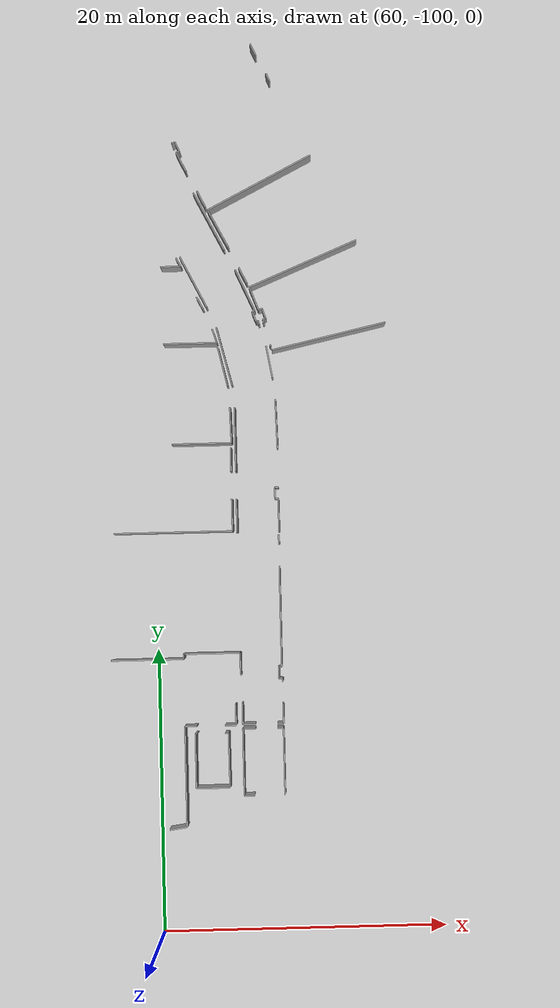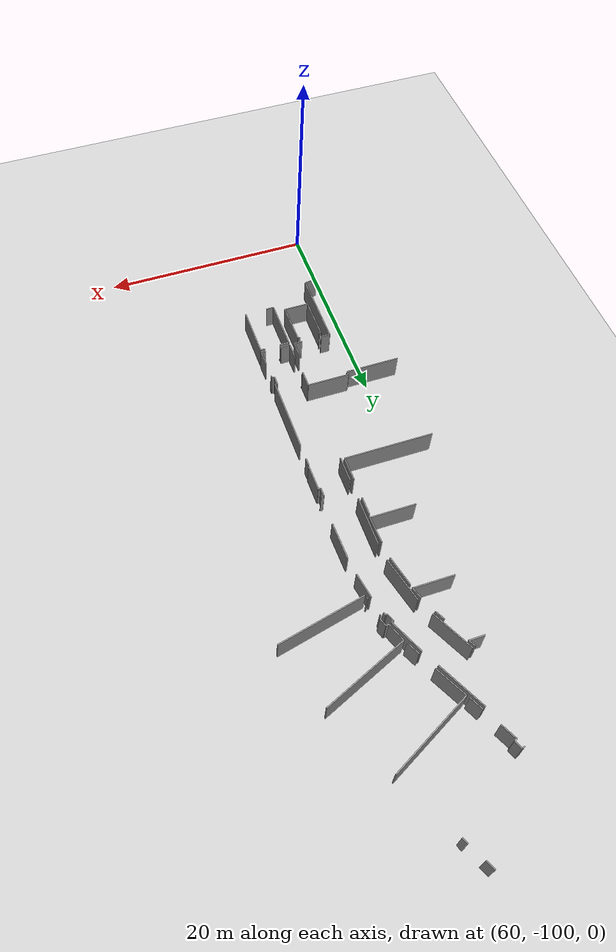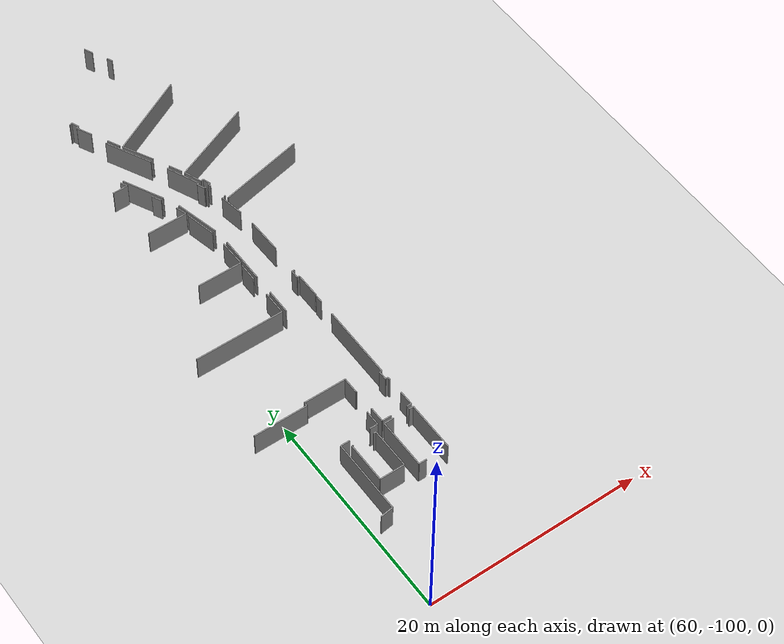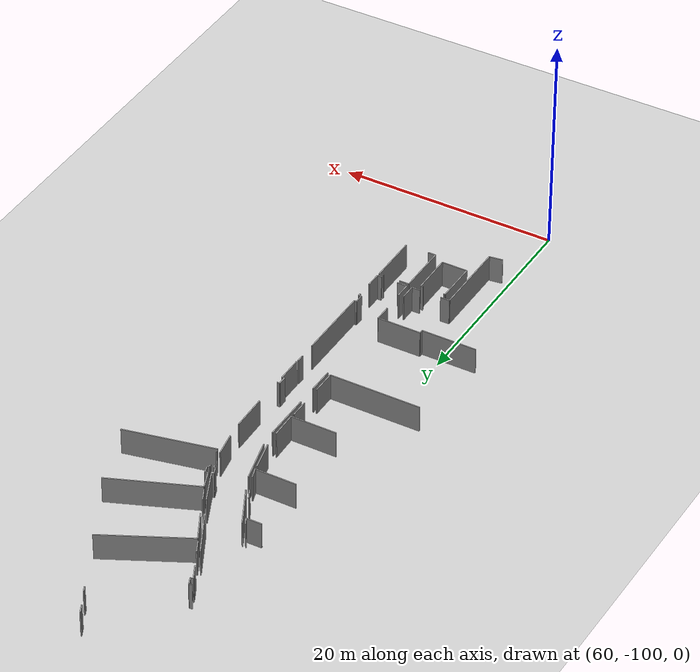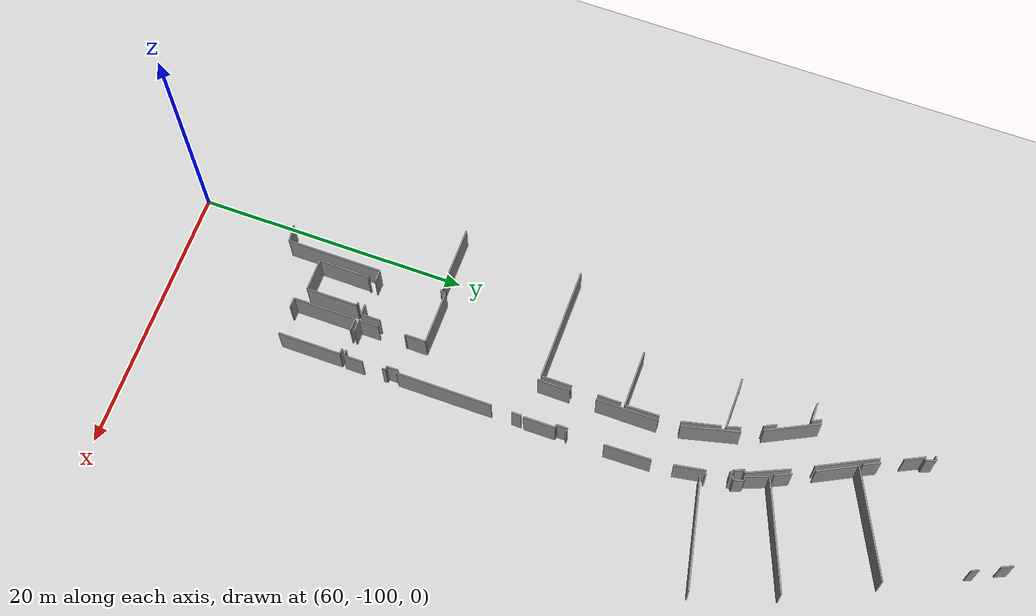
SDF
<sdf version="1.6">
 <world name="default">
  <model name="ground_plane">
   <static>1</static>
   <link name="link">
    <collision name="collision">
     <geometry><plane><normal>0 0 1</normal><size>100 100</size></plane></geometry>
     <surface><friction><ode><mu>100</mu><mu2>50</mu2></ode></friction></surface>
    </collision>
    <visual name="visual">
     <cast_shadows>0</cast_shadows>
     <geometry><plane><normal>0 0 1</normal><size>100 100</size></plane></geometry>
     <material>
      <script><uri>file://media/materials/scripts/gazebo.material</uri><name>Gazebo/Grey</name></script>
     </material>
    </visual>
   </link>
  </model>
  <model name="0510045922_A-40">
   <static>1</static>
   <link name="Wall_1893">
    <collision name="Wall_1893_Collision">
     <geometry><box><size>2.38317341298 0.1 2.5</size></box></geometry>
     <pose>1.19158670649 0 1.25 0 0 0</pose>
    </collision>
    <visual name="Wall_1893_Visual">
     <pose>1.19158670649 0 1.25 0 0 0</pose>
     <geometry><box><size>2.38317341298 0.1 2.5</size></box></geometry>
     <material>
      <script><uri>file://media/materials/scripts/gazebo.material</uri><name>Gazebo/Grey</name></script>
      <ambient>1 1 1 1</ambient>
     </material>
    </visual>
    <pose>199.995221453 -173.059007435 0 0 0 1.57079632679</pose>
   </link>
   <link name="Wall_1894">
    <collision name="Wall_1894_Collision">
     <geometry><box><size>4.55512486497 0.1 2.5</size></box></geometry>
     <pose>2.27756243248 0 1.25 0 0 0</pose>
    </collision>
    <visual name="Wall_1894_Visual">
     <pose>2.27756243248 0 1.25 0 0 0</pose>
     <geometry><box><size>4.55512486497 0.1 2.5</size></box></geometry>
     <material>
      <script><uri>file://media/materials/scripts/gazebo.material</uri><name>Gazebo/Grey</name></script>
      <ambient>1 1 1 1</ambient>
     </material>
    </visual>
    <pose>199.995221453 -168.733151172 0 0 0 1.57079632679</pose>
   </link>
   <link name="Wall_1895">
    <collision name="Wall_1895_Collision">
     <geometry><box><size>4.22030789969 0.1 2.5</size></box></geometry>
     <pose>2.11015394985 0 1.25 0 0 0</pose>
    </collision>
    <visual name="Wall_1895_Visual">
     <pose>2.11015394985 0 1.25 0 0 0</pose>
     <geometry><box><size>4.22030789969 0.1 2.5</size></box></geometry>
     <material>
      <script><uri>file://media/materials/scripts/gazebo.material</uri><name>Gazebo/Grey</name></script>
      <ambient>1 1 1 1</ambient>
     </material>
    </visual>
    <pose>199.860761263 -162.582804855 0 0 0 1.81577498992</pose>
   </link>
   <link name="Wall_1896">
    <collision name="Wall_1896_Collision">
     <geometry><box><size>4.06427198817 0.1 2.5</size></box></geometry>
     <pose>2.03213599408 0 1.25 0 0 0</pose>
    </collision>
    <visual name="Wall_1896_Visual">
     <pose>2.03213599408 0 1.25 0 0 0</pose>
     <geometry><box><size>4.06427198817 0.1 2.5</size></box></geometry>
     <material>
      <script><uri>file://media/materials/scripts/gazebo.material</uri><name>Gazebo/Grey</name></script>
      <ambient>1 1 1 1</ambient>
     </material>
    </visual>
    <pose>198.2042829 -157.041723327 0 0 0 2.03928251749</pose>
   </link>
   <link name="Wall_1902">
    <collision name="Wall_1902_Collision">
     <geometry><box><size>4.58200148981 0.1 2.5</size></box></geometry>
     <pose>2.29100074491 0 1.25 0 0 0</pose>
    </collision>
    <visual name="Wall_1902_Visual">
     <pose>2.29100074491 0 1.25 0 0 0</pose>
     <geometry><box><size>4.58200148981 0.1 2.5</size></box></geometry>
     <material>
      <script><uri>file://media/materials/scripts/gazebo.material</uri><name>Gazebo/Grey</name></script>
      <ambient>1 1 1 1</ambient>
     </material>
    </visual>
    <pose>197.437681896 -148.891249921 0 0 0 -1.10005347118</pose>
   </link>
   <link name="Wall_1903">
    <collision name="Wall_1903_Collision">
     <geometry><box><size>3.23225975953 0.1 2.5</size></box></geometry>
     <pose>1.61612987977 0 1.25 0 0 0</pose>
    </collision>
    <visual name="Wall_1903_Visual">
     <pose>1.61612987977 0 1.25 0 0 0</pose>
     <geometry><box><size>3.23225975953 0.1 2.5</size></box></geometry>
     <material>
      <script><uri>file://media/materials/scripts/gazebo.material</uri><name>Gazebo/Grey</name></script>
      <ambient>1 1 1 1</ambient>
     </material>
    </visual>
    <pose>200.268462858 -154.415809875 0 0 0 -1.14823641812</pose>
   </link>
   <link name="Wall_1904">
    <collision name="Wall_1904_Collision">
     <geometry><box><size>0.202545461097 0.1 2.5</size></box></geometry>
     <pose>0.101272730549 0 1.25 0 0 0</pose>
    </collision>
    <visual name="Wall_1904_Visual">
     <pose>0.101272730549 0 1.25 0 0 0</pose>
     <geometry><box><size>0.202545461097 0.1 2.5</size></box></geometry>
     <material>
      <script><uri>file://media/materials/scripts/gazebo.material</uri><name>Gazebo/Grey</name></script>
      <ambient>1 1 1 1</ambient>
     </material>
    </visual>
    <pose>201.594001398 -157.363766919 0 0 0 -2.77180597771</pose>
   </link>
   <link name="Wall_1905">
    <collision name="Wall_1905_Collision">
     <geometry><box><size>0.759554662817 0.1 2.5</size></box></geometry>
     <pose>0.379777331408 0 1.25 0 0 0</pose>
    </collision>
    <visual name="Wall_1905_Visual">
     <pose>0.379777331408 0 1.25 0 0 0</pose>
     <geometry><box><size>0.759554662817 0.1 2.5</size></box></geometry>
     <material>
      <script><uri>file://media/materials/scripts/gazebo.material</uri><name>Gazebo/Grey</name></script>
      <ambient>1 1 1 1</ambient>
     </material>
    </visual>
    <pose>201.405147106 -157.436970198 0 0 0 -1.19706339817</pose>
   </link>
   <link name="Wall_1906">
    <collision name="Wall_1906_Collision">
     <geometry><box><size>0.14198068357 0.1 2.5</size></box></geometry>
     <pose>0.0709903417851 0 1.25 0 0 0</pose>
    </collision>
    <visual name="Wall_1906_Visual">
     <pose>0.0709903417851 0 1.25 0 0 0</pose>
     <geometry><box><size>0.14198068357 0.1 2.5</size></box></geometry>
     <material>
      <script><uri>file://media/materials/scripts/gazebo.material</uri><name>Gazebo/Grey</name></script>
      <ambient>1 1 1 1</ambient>
     </material>
    </visual>
    <pose>201.68245536 -158.144093538 0 0 0 0.3432647882</pose>
   </link>
   <link name="Wall_1907">
    <collision name="Wall_1907_Collision">
     <geometry><box><size>0.259850288648 0.1 2.5</size></box></geometry>
     <pose>0.129925144324 0 1.25 0 0 0</pose>
    </collision>
    <visual name="Wall_1907_Visual">
     <pose>0.129925144324 0 1.25 0 0 0</pose>
     <geometry><box><size>0.259850288648 0.1 2.5</size></box></geometry>
     <material>
      <script><uri>file://media/materials/scripts/gazebo.material</uri><name>Gazebo/Grey</name></script>
      <ambient>1 1 1 1</ambient>
     </material>
    </visual>
    <pose>201.816153015 -158.096308064 0 0 0 -1.27193781234</pose>
   </link>
   <link name="Wall_1908">
    <collision name="Wall_1908_Collision">
     <geometry><box><size>2.28307194365 0.1 2.5</size></box></geometry>
     <pose>1.14153597183 0 1.25 0 0 0</pose>
    </collision>
    <visual name="Wall_1908_Visual">
     <pose>1.14153597183 0 1.25 0 0 0</pose>
     <geometry><box><size>2.28307194365 0.1 2.5</size></box></geometry>
     <material>
      <script><uri>file://media/materials/scripts/gazebo.material</uri><name>Gazebo/Grey</name></script>
      <ambient>1 1 1 1</ambient>
     </material>
    </visual>
    <pose>202.337726377 -159.891313465 0 0 0 -1.39838137295</pose>
   </link>
   <link name="Wall_1909">
    <collision name="Wall_1909_Collision">
     <geometry><box><size>3.43565894701 0.1 2.5</size></box></geometry>
     <pose>1.71782947351 0 1.25 0 0 0</pose>
    </collision>
    <visual name="Wall_1909_Visual">
     <pose>1.71782947351 0 1.25 0 0 0</pose>
     <geometry><box><size>3.43565894701 0.1 2.5</size></box></geometry>
     <material>
      <script><uri>file://media/materials/scripts/gazebo.material</uri><name>Gazebo/Grey</name></script>
      <ambient>1 1 1 1</ambient>
     </material>
    </visual>
    <pose>202.893613776 -163.695088009 0 0 0 -1.54726777525</pose>
   </link>
   <link name="Wall_1911">
    <collision name="Wall_1911_Collision">
     <geometry><box><size>0.253923873674 0.1 2.5</size></box></geometry>
     <pose>0.126961936837 0 1.25 0 0 0</pose>
    </collision>
    <visual name="Wall_1911_Visual">
     <pose>0.126961936837 0 1.25 0 0 0</pose>
     <geometry><box><size>0.253923873674 0.1 2.5</size></box></geometry>
     <material>
      <script><uri>file://media/materials/scripts/gazebo.material</uri><name>Gazebo/Grey</name></script>
      <ambient>1 1 1 1</ambient>
     </material>
    </visual>
    <pose>202.974442397 -169.909741374 0 0 0 3.14159265359</pose>
   </link>
   <link name="Wall_1912">
    <collision name="Wall_1912_Collision">
     <geometry><box><size>0.791256275021 0.1 2.5</size></box></geometry>
     <pose>0.39562813751 0 1.25 0 0 0</pose>
    </collision>
    <visual name="Wall_1912_Visual">
     <pose>0.39562813751 0 1.25 0 0 0</pose>
     <geometry><box><size>0.791256275021 0.1 2.5</size></box></geometry>
     <material>
      <script><uri>file://media/materials/scripts/gazebo.material</uri><name>Gazebo/Grey</name></script>
      <ambient>1 1 1 1</ambient>
     </material>
    </visual>
    <pose>202.720518523 -169.909741374 0 0 0 -1.57079632679</pose>
   </link>
   <link name="Wall_1913">
    <collision name="Wall_1913_Collision">
     <geometry><box><size>0.219864014742 0.1 2.5</size></box></geometry>
     <pose>0.109932007371 0 1.25 0 0 0</pose>
    </collision>
    <visual name="Wall_1913_Visual">
     <pose>0.109932007371 0 1.25 0 0 0</pose>
     <geometry><box><size>0.219864014742 0.1 2.5</size></box></geometry>
     <material>
      <script><uri>file://media/materials/scripts/gazebo.material</uri><name>Gazebo/Grey</name></script>
      <ambient>1 1 1 1</ambient>
     </material>
    </visual>
    <pose>202.720518523 -170.700997649 0 0 0 0.0</pose>
   </link>
   <link name="Wall_1914">
    <collision name="Wall_1914_Collision">
     <geometry><box><size>2.35806766497 0.1 2.5</size></box></geometry>
     <pose>1.17903383248 0 1.25 0 0 0</pose>
    </collision>
    <visual name="Wall_1914_Visual">
     <pose>1.17903383248 0 1.25 0 0 0</pose>
     <geometry><box><size>2.35806766497 0.1 2.5</size></box></geometry>
     <material>
      <script><uri>file://media/materials/scripts/gazebo.material</uri><name>Gazebo/Grey</name></script>
      <ambient>1 1 1 1</ambient>
     </material>
    </visual>
    <pose>202.940382538 -170.700997649 0 0 0 -1.56378986605</pose>
   </link>
   <link name="Wall_1915">
    <collision name="Wall_1915_Collision">
     <geometry><box><size>0.428544195209 0.1 2.5</size></box></geometry>
     <pose>0.214272097604 0 1.25 0 0 0</pose>
    </collision>
    <visual name="Wall_1915_Visual">
     <pose>0.214272097604 0 1.25 0 0 0</pose>
     <geometry><box><size>0.428544195209 0.1 2.5</size></box></geometry>
     <material>
      <script><uri>file://media/materials/scripts/gazebo.material</uri><name>Gazebo/Grey</name></script>
      <ambient>1 1 1 1</ambient>
     </material>
    </visual>
    <pose>202.96224185 -186.535781915 0 0 0 3.14159265359</pose>
   </link>
   <link name="Wall_1916">
    <collision name="Wall_1916_Collision">
     <geometry><box><size>0.902586261676 0.1 2.5</size></box></geometry>
     <pose>0.451293130838 0 1.25 0 0 0</pose>
    </collision>
    <visual name="Wall_1916_Visual">
     <pose>0.451293130838 0 1.25 0 0 0</pose>
     <geometry><box><size>0.902586261676 0.1 2.5</size></box></geometry>
     <material>
      <script><uri>file://media/materials/scripts/gazebo.material</uri><name>Gazebo/Grey</name></script>
      <ambient>1 1 1 1</ambient>
     </material>
    </visual>
    <pose>200.99236195 -186.535781915 0 0 0 3.14159265359</pose>
   </link>
   <link name="Wall_1917">
    <collision name="Wall_1917_Collision">
     <geometry><box><size>1.48363728792 0.1 2.5</size></box></geometry>
     <pose>0.74181864396 0 1.25 0 0 0</pose>
    </collision>
    <visual name="Wall_1917_Visual">
     <pose>0.74181864396 0 1.25 0 0 0</pose>
     <geometry><box><size>1.48363728792 0.1 2.5</size></box></geometry>
     <material>
      <script><uri>file://media/materials/scripts/gazebo.material</uri><name>Gazebo/Grey</name></script>
      <ambient>1 1 1 1</ambient>
     </material>
    </visual>
    <pose>200.089775688 -186.535781915 0 0 0 1.57079632679</pose>
   </link>
   <link name="Wall_1918">
    <collision name="Wall_1918_Collision">
     <geometry><box><size>0.0775243057762 0.1 2.5</size></box></geometry>
     <pose>0.0387621528881 0 1.25 0 0 0</pose>
    </collision>
    <visual name="Wall_1918_Visual">
     <pose>0.0387621528881 0 1.25 0 0 0</pose>
     <geometry><box><size>0.0775243057762 0.1 2.5</size></box></geometry>
     <material>
      <script><uri>file://media/materials/scripts/gazebo.material</uri><name>Gazebo/Grey</name></script>
      <ambient>1 1 1 1</ambient>
     </material>
    </visual>
    <pose>200.089775688 -183.029904048 0 0 0 3.14159265359</pose>
   </link>
   <link name="Wall_1919">
    <collision name="Wall_1919_Collision">
     <geometry><box><size>1.52913515918 0.1 2.5</size></box></geometry>
     <pose>0.764567579589 0 1.25 0 0 0</pose>
    </collision>
    <visual name="Wall_1919_Visual">
     <pose>0.764567579589 0 1.25 0 0 0</pose>
     <geometry><box><size>1.52913515918 0.1 2.5</size></box></geometry>
     <material>
      <script><uri>file://media/materials/scripts/gazebo.material</uri><name>Gazebo/Grey</name></script>
      <ambient>1 1 1 1</ambient>
     </material>
    </visual>
    <pose>200.012251382 -183.029904048 0 0 0 1.57079632679</pose>
   </link>
   <link name="Wall_1920">
    <collision name="Wall_1920_Collision">
     <geometry><box><size>3.98678274131 0.1 2.5</size></box></geometry>
     <pose>1.99339137066 0 1.25 0 0 0</pose>
    </collision>
    <visual name="Wall_1920_Visual">
     <pose>1.99339137066 0 1.25 0 0 0</pose>
     <geometry><box><size>3.98678274131 0.1 2.5</size></box></geometry>
     <material>
      <script><uri>file://media/materials/scripts/gazebo.material</uri><name>Gazebo/Grey</name></script>
      <ambient>1 1 1 1</ambient>
     </material>
    </visual>
    <pose>200.012251382 -181.500768889 0 0 0 3.14159265359</pose>
   </link>
   <link name="Wall_1921">
    <collision name="Wall_1921_Collision">
     <geometry><box><size>0.350511533329 0.1 2.5</size></box></geometry>
     <pose>0.175255766665 0 1.25 0 0 0</pose>
    </collision>
    <visual name="Wall_1921_Visual">
     <pose>0.175255766665 0 1.25 0 0 0</pose>
     <geometry><box><size>0.350511533329 0.1 2.5</size></box></geometry>
     <material>
      <script><uri>file://media/materials/scripts/gazebo.material</uri><name>Gazebo/Grey</name></script>
      <ambient>1 1 1 1</ambient>
     </material>
    </visual>
    <pose>196.025468641 -181.500768889 0 0 0 -1.57079632679</pose>
   </link>
   <link name="Wall_1922">
    <collision name="Wall_1922_Collision">
     <geometry><box><size>5.09296562242 0.1 2.5</size></box></geometry>
     <pose>2.54648281121 0 1.25 0 0 0</pose>
    </collision>
    <visual name="Wall_1922_Visual">
     <pose>2.54648281121 0 1.25 0 0 0</pose>
     <geometry><box><size>5.09296562242 0.1 2.5</size></box></geometry>
     <material>
      <script><uri>file://media/materials/scripts/gazebo.material</uri><name>Gazebo/Grey</name></script>
      <ambient>1 1 1 1</ambient>
     </material>
    </visual>
    <pose>196.025468641 -181.851280422 0 0 0 3.14159265359</pose>
   </link>
   <link name="Wall_1933">
    <collision name="Wall_1933_Collision">
     <geometry><box><size>0.709919298469 0.1 2.5</size></box></geometry>
     <pose>0.354959649234 0 1.25 0 0 0</pose>
    </collision>
    <visual name="Wall_1933_Visual">
     <pose>0.354959649234 0 1.25 0 0 0</pose>
     <geometry><box><size>0.709919298469 0.1 2.5</size></box></geometry>
     <material>
      <script><uri>file://media/materials/scripts/gazebo.material</uri><name>Gazebo/Grey</name></script>
      <ambient>1 1 1 1</ambient>
     </material>
    </visual>
    <pose>202.914202199 -173.228290017 0 0 0 -1.57079632679</pose>
   </link>
   <link name="Wall_1934">
    <collision name="Wall_1934_Collision">
     <geometry><box><size>7.08012963081 0.1 2.5</size></box></geometry>
     <pose>3.5400648154 0 1.25 0 0 0</pose>
    </collision>
    <visual name="Wall_1934_Visual">
     <pose>3.5400648154 0 1.25 0 0 0</pose>
     <geometry><box><size>7.08012963081 0.1 2.5</size></box></geometry>
     <material>
      <script><uri>file://media/materials/scripts/gazebo.material</uri><name>Gazebo/Grey</name></script>
      <ambient>1 1 1 1</ambient>
     </material>
    </visual>
    <pose>202.914202199 -175.458956599 0 0 0 -1.57079632679</pose>
   </link>
   <link name="Wall_1935">
    <collision name="Wall_1935_Collision">
     <geometry><box><size>0.209442714622 0.1 2.5</size></box></geometry>
     <pose>0.104721357311 0 1.25 0 0 0</pose>
    </collision>
    <visual name="Wall_1935_Visual">
     <pose>0.104721357311 0 1.25 0 0 0</pose>
     <geometry><box><size>0.209442714622 0.1 2.5</size></box></geometry>
     <material>
      <script><uri>file://media/materials/scripts/gazebo.material</uri><name>Gazebo/Grey</name></script>
      <ambient>1 1 1 1</ambient>
     </material>
    </visual>
    <pose>202.914202199 -182.53908623 0 0 0 3.14159265359</pose>
   </link>
   <link name="Wall_1936">
    <collision name="Wall_1936_Collision">
     <geometry><box><size>0.831416407193 0.1 2.5</size></box></geometry>
     <pose>0.415708203597 0 1.25 0 0 0</pose>
    </collision>
    <visual name="Wall_1936_Visual">
     <pose>0.415708203597 0 1.25 0 0 0</pose>
     <geometry><box><size>0.831416407193 0.1 2.5</size></box></geometry>
     <material>
      <script><uri>file://media/materials/scripts/gazebo.material</uri><name>Gazebo/Grey</name></script>
      <ambient>1 1 1 1</ambient>
     </material>
    </visual>
    <pose>202.704759484 -182.53908623 0 0 0 -1.57079632679</pose>
   </link>
   <link name="Wall_1937">
    <collision name="Wall_1937_Collision">
     <geometry><box><size>0.248586134587 0.1 2.5</size></box></geometry>
     <pose>0.124293067294 0 1.25 0 0 0</pose>
    </collision>
    <visual name="Wall_1937_Visual">
     <pose>0.124293067294 0 1.25 0 0 0</pose>
     <geometry><box><size>0.248586134587 0.1 2.5</size></box></geometry>
     <material>
      <script><uri>file://media/materials/scripts/gazebo.material</uri><name>Gazebo/Grey</name></script>
      <ambient>1 1 1 1</ambient>
     </material>
    </visual>
    <pose>202.704759484 -183.370502637 0 0 0 0.0</pose>
   </link>
   <link name="Wall_1938">
    <collision name="Wall_1938_Collision">
     <geometry><box><size>0.248586134587 0.1 2.5</size></box></geometry>
     <pose>0.124293067294 0 1.25 0 0 0</pose>
    </collision>
    <visual name="Wall_1938_Visual">
     <pose>0.124293067294 0 1.25 0 0 0</pose>
     <geometry><box><size>0.248586134587 0.1 2.5</size></box></geometry>
     <material>
      <script><uri>file://media/materials/scripts/gazebo.material</uri><name>Gazebo/Grey</name></script>
      <ambient>1 1 1 1</ambient>
     </material>
    </visual>
    <pose>202.953345619 -183.370502637 0 0 0 -1.57079632679</pose>
   </link>
   <link name="Wall_1939">
    <collision name="Wall_1939_Collision">
     <geometry><box><size>1.40817450809 0.1 2.5</size></box></geometry>
     <pose>0.704087254046 0 1.25 0 0 0</pose>
    </collision>
    <visual name="Wall_1939_Visual">
     <pose>0.704087254046 0 1.25 0 0 0</pose>
     <geometry><box><size>1.40817450809 0.1 2.5</size></box></geometry>
     <material>
      <script><uri>file://media/materials/scripts/gazebo.material</uri><name>Gazebo/Grey</name></script>
      <ambient>1 1 1 1</ambient>
     </material>
    </visual>
    <pose>202.953345619 -185.127635509 0 0 0 -1.56447872132</pose>
   </link>
   <link name="Wall_1946">
    <collision name="Wall_1946_Collision">
     <geometry><box><size>0.864773538699 0.1 2.5</size></box></geometry>
     <pose>0.432386769349 0 1.25 0 0 0</pose>
    </collision>
    <visual name="Wall_1946_Visual">
     <pose>0.432386769349 0 1.25 0 0 0</pose>
     <geometry><box><size>0.864773538699 0.1 2.5</size></box></geometry>
     <material>
      <script><uri>file://media/materials/scripts/gazebo.material</uri><name>Gazebo/Grey</name></script>
      <ambient>1 1 1 1</ambient>
     </material>
    </visual>
    <pose>201.705839741 -138.344894198 0 0 0 -1.13344114538</pose>
   </link>
   <link name="Wall_1947">
    <collision name="Wall_1947_Collision">
     <geometry><box><size>0.554384764689 0.1 2.5</size></box></geometry>
     <pose>0.277192382345 0 1.25 0 0 0</pose>
    </collision>
    <visual name="Wall_1947_Visual">
     <pose>0.277192382345 0 1.25 0 0 0</pose>
     <geometry><box><size>0.554384764689 0.1 2.5</size></box></geometry>
     <material>
      <script><uri>file://media/materials/scripts/gazebo.material</uri><name>Gazebo/Grey</name></script>
      <ambient>1 1 1 1</ambient>
     </material>
    </visual>
    <pose>202.779996187 -140.480498189 0 0 0 -1.14796330586</pose>
   </link>
   <link name="Wall_1950">
    <collision name="Wall_1950_Collision">
     <geometry><box><size>1.27282158646 0.1 2.5</size></box></geometry>
     <pose>0.636410793232 0 1.25 0 0 0</pose>
    </collision>
    <visual name="Wall_1950_Visual">
     <pose>0.636410793232 0 1.25 0 0 0</pose>
     <geometry><box><size>1.27282158646 0.1 2.5</size></box></geometry>
     <material>
      <script><uri>file://media/materials/scripts/gazebo.material</uri><name>Gazebo/Grey</name></script>
      <ambient>1 1 1 1</ambient>
     </material>
    </visual>
    <pose>198.259185359 -149.909995552 0 0 0 2.02676345808</pose>
   </link>
   <link name="Wall_1951">
    <collision name="Wall_1951_Collision">
     <geometry><box><size>1.48080374316 0.1 2.5</size></box></geometry>
     <pose>0.740401871578 0 1.25 0 0 0</pose>
    </collision>
    <visual name="Wall_1951_Visual">
     <pose>0.740401871578 0 1.25 0 0 0</pose>
     <geometry><box><size>1.48080374316 0.1 2.5</size></box></geometry>
     <material>
      <script><uri>file://media/materials/scripts/gazebo.material</uri><name>Gazebo/Grey</name></script>
      <ambient>1 1 1 1</ambient>
     </material>
    </visual>
    <pose>196.942797229 -147.322717163 0 0 0 2.03398335396</pose>
   </link>
   <link name="Wall_1952">
    <collision name="Wall_1952_Collision">
     <geometry><box><size>0.240841852324 0.1 2.5</size></box></geometry>
     <pose>0.120420926162 0 1.25 0 0 0</pose>
    </collision>
    <visual name="Wall_1952_Visual">
     <pose>0.120420926162 0 1.25 0 0 0</pose>
     <geometry><box><size>0.240841852324 0.1 2.5</size></box></geometry>
     <material>
      <script><uri>file://media/materials/scripts/gazebo.material</uri><name>Gazebo/Grey</name></script>
      <ambient>1 1 1 1</ambient>
     </material>
    </visual>
    <pose>196.281171761 -145.997941158 0 0 0 0.423046409649</pose>
   </link>
   <link name="Wall_1953">
    <collision name="Wall_1953_Collision">
     <geometry><box><size>0.728615694561 0.1 2.5</size></box></geometry>
     <pose>0.36430784728 0 1.25 0 0 0</pose>
    </collision>
    <visual name="Wall_1953_Visual">
     <pose>0.36430784728 0 1.25 0 0 0</pose>
     <geometry><box><size>0.728615694561 0.1 2.5</size></box></geometry>
     <material>
      <script><uri>file://media/materials/scripts/gazebo.material</uri><name>Gazebo/Grey</name></script>
      <ambient>1 1 1 1</ambient>
     </material>
    </visual>
    <pose>196.500781598 -145.899065896 0 0 0 1.97371843948</pose>
   </link>
   <link name="Wall_1954">
    <collision name="Wall_1954_Collision">
     <geometry><box><size>0.271311347879 0.1 2.5</size></box></geometry>
     <pose>0.13565567394 0 1.25 0 0 0</pose>
    </collision>
    <visual name="Wall_1954_Visual">
     <pose>0.13565567394 0 1.25 0 0 0</pose>
     <geometry><box><size>0.271311347879 0.1 2.5</size></box></geometry>
     <material>
      <script><uri>file://media/materials/scripts/gazebo.material</uri><name>Gazebo/Grey</name></script>
      <ambient>1 1 1 1</ambient>
     </material>
    </visual>
    <pose>196.215085467 -145.228798373 0 0 0 -2.76856699984</pose>
   </link>
   <link name="Wall_1960">
    <collision name="Wall_1960_Collision">
     <geometry><box><size>1.26080025879 0.1 2.5</size></box></geometry>
     <pose>0.630400129394 0 1.25 0 0 0</pose>
    </collision>
    <visual name="Wall_1960_Visual">
     <pose>0.630400129394 0 1.25 0 0 0</pose>
     <geometry><box><size>1.26080025879 0.1 2.5</size></box></geometry>
     <material>
      <script><uri>file://media/materials/scripts/gazebo.material</uri><name>Gazebo/Grey</name></script>
      <ambient>1 1 1 1</ambient>
     </material>
    </visual>
    <pose>201.085391116 -155.416254686 0 0 0 2.02425584723</pose>
   </link>
   <link name="Wall_1961">
    <collision name="Wall_1961_Collision">
     <geometry><box><size>3.03456868808 0.1 2.5</size></box></geometry>
     <pose>1.51728434404 0 1.25 0 0 0</pose>
    </collision>
    <visual name="Wall_1961_Visual">
     <pose>1.51728434404 0 1.25 0 0 0</pose>
     <geometry><box><size>3.03456868808 0.1 2.5</size></box></geometry>
     <material>
      <script><uri>file://media/materials/scripts/gazebo.material</uri><name>Gazebo/Grey</name></script>
      <ambient>1 1 1 1</ambient>
     </material>
    </visual>
    <pose>199.825684692 -152.819317532 0 0 0 2.05145113746</pose>
   </link>
   <link name="Wall_1962">
    <collision name="Wall_1962_Collision">
     <geometry><box><size>8.24706069025 0.1 2.5</size></box></geometry>
     <pose>4.12353034513 0 1.25 0 0 0</pose>
    </collision>
    <visual name="Wall_1962_Visual">
     <pose>4.12353034513 0 1.25 0 0 0</pose>
     <geometry><box><size>8.24706069025 0.1 2.5</size></box></geometry>
     <material>
      <script><uri>file://media/materials/scripts/gazebo.material</uri><name>Gazebo/Grey</name></script>
      <ambient>1 1 1 1</ambient>
     </material>
    </visual>
    <pose>198.422621847 -150.128588676 0 0 0 0.469987978897</pose>
   </link>
   <link name="Wall_1967">
    <collision name="Wall_1967_Collision">
     <geometry><box><size>0.107908387378 0.1 2.5</size></box></geometry>
     <pose>0.0539541936889 0 1.25 0 0 0</pose>
    </collision>
    <visual name="Wall_1967_Visual">
     <pose>0.0539541936889 0 1.25 0 0 0</pose>
     <geometry><box><size>0.107908387378 0.1 2.5</size></box></geometry>
     <material>
      <script><uri>file://media/materials/scripts/gazebo.material</uri><name>Gazebo/Grey</name></script>
      <ambient>1 1 1 1</ambient>
     </material>
    </visual>
    <pose>202.661549215 -159.908089216 0 0 0 1.96486267764</pose>
   </link>
   <link name="Wall_1968">
    <collision name="Wall_1968_Collision">
     <geometry><box><size>0.272805053163 0.1 2.5</size></box></geometry>
     <pose>0.136402526581 0 1.25 0 0 0</pose>
    </collision>
    <visual name="Wall_1968_Visual">
     <pose>0.136402526581 0 1.25 0 0 0</pose>
     <geometry><box><size>0.272805053163 0.1 2.5</size></box></geometry>
     <material>
      <script><uri>file://media/materials/scripts/gazebo.material</uri><name>Gazebo/Grey</name></script>
      <ambient>1 1 1 1</ambient>
     </material>
    </visual>
    <pose>202.22385461 -158.273724344 0 0 0 1.80492795773</pose>
   </link>
   <link name="Wall_1969">
    <collision name="Wall_1969_Collision">
     <geometry><box><size>0.204280260966 0.1 2.5</size></box></geometry>
     <pose>0.102140130483 0 1.25 0 0 0</pose>
    </collision>
    <visual name="Wall_1969_Visual">
     <pose>0.102140130483 0 1.25 0 0 0</pose>
     <geometry><box><size>0.204280260966 0.1 2.5</size></box></geometry>
     <material>
      <script><uri>file://media/materials/scripts/gazebo.material</uri><name>Gazebo/Grey</name></script>
      <ambient>1 1 1 1</ambient>
     </material>
    </visual>
    <pose>202.160564275 -158.008362458 0 0 0 0.381199537815</pose>
   </link>
   <link name="Wall_1970">
    <collision name="Wall_1970_Collision">
     <geometry><box><size>0.731210705636 0.1 2.5</size></box></geometry>
     <pose>0.365605352818 0 1.25 0 0 0</pose>
    </collision>
    <visual name="Wall_1970_Visual">
     <pose>0.365605352818 0 1.25 0 0 0</pose>
     <geometry><box><size>0.731210705636 0.1 2.5</size></box></geometry>
     <material>
      <script><uri>file://media/materials/scripts/gazebo.material</uri><name>Gazebo/Grey</name></script>
      <ambient>1 1 1 1</ambient>
     </material>
    </visual>
    <pose>202.350181102 -157.93236322 0 0 0 1.88716054216</pose>
   </link>
   <link name="Wall_1971">
    <collision name="Wall_1971_Collision">
     <geometry><box><size>0.272746196325 0.1 2.5</size></box></geometry>
     <pose>0.136373098162 0 1.25 0 0 0</pose>
    </collision>
    <visual name="Wall_1971_Visual">
     <pose>0.136373098162 0 1.25 0 0 0</pose>
     <geometry><box><size>0.272746196325 0.1 2.5</size></box></geometry>
     <material>
      <script><uri>file://media/materials/scripts/gazebo.material</uri><name>Gazebo/Grey</name></script>
      <ambient>1 1 1 1</ambient>
     </material>
    </visual>
    <pose>202.122691746 -157.237440427 0 0 0 -2.90836751792</pose>
   </link>
   <link name="Wall_1972">
    <collision name="Wall_1972_Collision">
     <geometry><box><size>1.72730332071 0.1 2.5</size></box></geometry>
     <pose>0.863651660356 0 1.25 0 0 0</pose>
    </collision>
    <visual name="Wall_1972_Visual">
     <pose>0.863651660356 0 1.25 0 0 0</pose>
     <geometry><box><size>1.72730332071 0.1 2.5</size></box></geometry>
     <material>
      <script><uri>file://media/materials/scripts/gazebo.material</uri><name>Gazebo/Grey</name></script>
      <ambient>1 1 1 1</ambient>
     </material>
    </visual>
    <pose>201.85732986 -157.300476584 0 0 0 1.9295497741</pose>
   </link>
   <link name="Wall_1973">
    <collision name="Wall_1973_Collision">
     <geometry><box><size>8.26077002653 0.1 2.5</size></box></geometry>
     <pose>4.13038501326 0 1.25 0 0 0</pose>
    </collision>
    <visual name="Wall_1973_Visual">
     <pose>4.13038501326 0 1.25 0 0 0</pose>
     <geometry><box><size>8.26077002653 0.1 2.5</size></box></geometry>
     <material>
      <script><uri>file://media/materials/scripts/gazebo.material</uri><name>Gazebo/Grey</name></script>
      <ambient>1 1 1 1</ambient>
     </material>
    </visual>
    <pose>201.250861028 -155.683141641 0 0 0 0.392459751941</pose>
   </link>
   <link name="Wall_1980">
    <collision name="Wall_1980_Collision">
     <geometry><box><size>8.2568168777 0.1 2.5</size></box></geometry>
     <pose>4.12840843885 0 1.25 0 0 0</pose>
    </collision>
    <visual name="Wall_1980_Visual">
     <pose>4.12840843885 0 1.25 0 0 0</pose>
     <geometry><box><size>8.2568168777 0.1 2.5</size></box></geometry>
     <material>
      <script><uri>file://media/materials/scripts/gazebo.material</uri><name>Gazebo/Grey</name></script>
      <ambient>1 1 1 1</ambient>
     </material>
    </visual>
    <pose>202.742123658 -160.194547881 0 0 0 0.217506974919</pose>
   </link>
   <link name="Wall_1995">
    <collision name="Wall_1995_Collision">
     <geometry><box><size>1.43591741574 0.1 2.5</size></box></geometry>
     <pose>0.717958707871 0 1.25 0 0 0</pose>
    </collision>
    <visual name="Wall_1995_Visual">
     <pose>0.717958707871 0 1.25 0 0 0</pose>
     <geometry><box><size>1.43591741574 0.1 2.5</size></box></geometry>
     <material>
      <script><uri>file://media/materials/scripts/gazebo.material</uri><name>Gazebo/Grey</name></script>
      <ambient>1 1 1 1</ambient>
     </material>
    </visual>
    <pose>196.420207155 -154.094020461 0 0 0 -3.13203373072</pose>
   </link>
   <link name="Wall_1998">
    <collision name="Wall_1998_Collision">
     <geometry><box><size>0.692920697651 0.1 2.5</size></box></geometry>
     <pose>0.346460348826 0 1.25 0 0 0</pose>
    </collision>
    <visual name="Wall_1998_Visual">
     <pose>0.346460348826 0 1.25 0 0 0</pose>
     <geometry><box><size>0.692920697651 0.1 2.5</size></box></geometry>
     <material>
      <script><uri>file://media/materials/scripts/gazebo.material</uri><name>Gazebo/Grey</name></script>
      <ambient>1 1 1 1</ambient>
     </material>
    </visual>
    <pose>196.095367605 -153.481959713 0 0 0 -1.08286730779</pose>
   </link>
   <link name="Wall_1999">
    <collision name="Wall_1999_Collision">
     <geometry><box><size>3.78064434136 0.1 2.5</size></box></geometry>
     <pose>1.89032217068 0 1.25 0 0 0</pose>
    </collision>
    <visual name="Wall_1999_Visual">
     <pose>1.89032217068 0 1.25 0 0 0</pose>
     <geometry><box><size>3.78064434136 0.1 2.5</size></box></geometry>
     <material>
      <script><uri>file://media/materials/scripts/gazebo.material</uri><name>Gazebo/Grey</name></script>
      <ambient>1 1 1 1</ambient>
     </material>
    </visual>
    <pose>198.864637479 -159.584774735 0 0 0 3.14159265359</pose>
   </link>
   <link name="Wall_2002">
    <collision name="Wall_2002_Collision">
     <geometry><box><size>0.951120446571 0.1 2.5</size></box></geometry>
     <pose>0.475560223285 0 1.25 0 0 0</pose>
    </collision>
    <visual name="Wall_2002_Visual">
     <pose>0.475560223285 0 1.25 0 0 0</pose>
     <geometry><box><size>0.951120446571 0.1 2.5</size></box></geometry>
     <material>
      <script><uri>file://media/materials/scripts/gazebo.material</uri><name>Gazebo/Grey</name></script>
      <ambient>1 1 1 1</ambient>
     </material>
    </visual>
    <pose>197.501734765 -156.310198894 0 0 0 -1.09949976932</pose>
   </link>
   <link name="Wall_2003">
    <collision name="Wall_2003_Collision">
     <geometry><box><size>1.04376678027 0.1 2.5</size></box></geometry>
     <pose>0.521883390137 0 1.25 0 0 0</pose>
    </collision>
    <visual name="Wall_2003_Visual">
     <pose>0.521883390137 0 1.25 0 0 0</pose>
     <geometry><box><size>1.04376678027 0.1 2.5</size></box></geometry>
     <material>
      <script><uri>file://media/materials/scripts/gazebo.material</uri><name>Gazebo/Grey</name></script>
      <ambient>1 1 1 1</ambient>
     </material>
    </visual>
    <pose>198.544881489 -158.591192731 0 0 0 -1.25944200931</pose>
   </link>
   <link name="Wall_2004">
    <collision name="Wall_2004_Collision">
     <geometry><box><size>4.22825189045 0.1 2.5</size></box></geometry>
     <pose>2.11412594522 0 1.25 0 0 0</pose>
    </collision>
    <visual name="Wall_2004_Visual">
     <pose>2.11412594522 0 1.25 0 0 0</pose>
     <geometry><box><size>4.22825189045 0.1 2.5</size></box></geometry>
     <material>
      <script><uri>file://media/materials/scripts/gazebo.material</uri><name>Gazebo/Grey</name></script>
      <ambient>1 1 1 1</ambient>
     </material>
    </visual>
    <pose>199.738755798 -166.701760183 0 0 0 3.14159265359</pose>
   </link>
   <link name="Wall_2007">
    <collision name="Wall_2007_Collision">
     <geometry><box><size>2.83874651126 0.1 2.5</size></box></geometry>
     <pose>1.41937325563 0 1.25 0 0 0</pose>
    </collision>
    <visual name="Wall_2007_Visual">
     <pose>1.41937325563 0 1.25 0 0 0</pose>
     <geometry><box><size>2.83874651126 0.1 2.5</size></box></geometry>
     <material>
      <script><uri>file://media/materials/scripts/gazebo.material</uri><name>Gazebo/Grey</name></script>
      <ambient>1 1 1 1</ambient>
     </material>
    </visual>
    <pose>198.911660418 -159.898938807 0 0 0 -1.34227940575</pose>
   </link>
   <link name="Wall_2008">
    <collision name="Wall_2008_Collision">
     <geometry><box><size>2.51472999986 0.1 2.5</size></box></geometry>
     <pose>1.25736499993 0 1.25 0 0 0</pose>
    </collision>
    <visual name="Wall_2008_Visual">
     <pose>1.25736499993 0 1.25 0 0 0</pose>
     <geometry><box><size>2.51472999986 0.1 2.5</size></box></geometry>
     <material>
      <script><uri>file://media/materials/scripts/gazebo.material</uri><name>Gazebo/Grey</name></script>
      <ambient>1 1 1 1</ambient>
     </material>
    </visual>
    <pose>199.671144437 -164.187939251 0 0 0 -1.54390695495</pose>
   </link>
   <link name="Wall_2009">
    <collision name="Wall_2009_Collision">
     <geometry><box><size>8.39626358264 0.1 2.5</size></box></geometry>
     <pose>4.19813179132 0 1.25 0 0 0</pose>
    </collision>
    <visual name="Wall_2009_Visual">
     <pose>4.19813179132 0 1.25 0 0 0</pose>
     <geometry><box><size>8.39626358264 0.1 2.5</size></box></geometry>
     <material>
      <script><uri>file://media/materials/scripts/gazebo.material</uri><name>Gazebo/Grey</name></script>
      <ambient>1 1 1 1</ambient>
     </material>
    </visual>
    <pose>199.671906971 -172.923022177 0 0 0 3.14159265359</pose>
   </link>
   <link name="Wall_2016">
    <collision name="Wall_2016_Collision">
     <geometry><box><size>1.71036411006 0.1 2.5</size></box></geometry>
     <pose>0.85518205503 0 1.25 0 0 0</pose>
    </collision>
    <visual name="Wall_2016_Visual">
     <pose>0.85518205503 0 1.25 0 0 0</pose>
     <geometry><box><size>1.71036411006 0.1 2.5</size></box></geometry>
     <material>
      <script><uri>file://media/materials/scripts/gazebo.material</uri><name>Gazebo/Grey</name></script>
      <ambient>1 1 1 1</ambient>
     </material>
    </visual>
    <pose>199.666060876 -167.011603228 0 0 0 -1.57079632679</pose>
   </link>
   <link name="Wall_2017">
    <collision name="Wall_2017_Collision">
     <geometry><box><size>2.26015879667 0.1 2.5</size></box></geometry>
     <pose>1.13007939833 0 1.25 0 0 0</pose>
    </collision>
    <visual name="Wall_2017_Visual">
     <pose>1.13007939833 0 1.25 0 0 0</pose>
     <geometry><box><size>2.26015879667 0.1 2.5</size></box></geometry>
     <material>
      <script><uri>file://media/materials/scripts/gazebo.material</uri><name>Gazebo/Grey</name></script>
      <ambient>1 1 1 1</ambient>
     </material>
    </visual>
    <pose>199.666060876 -170.662870941 0 0 0 -1.56820973787</pose>
   </link>
   <link name="Wall_2068">
    <collision name="Wall_2068_Collision">
     <geometry><box><size>0.726440871831 0.1 2.5</size></box></geometry>
     <pose>0.363220435915 0 1.25 0 0 0</pose>
    </collision>
    <visual name="Wall_2068_Visual">
     <pose>0.363220435915 0 1.25 0 0 0</pose>
     <geometry><box><size>0.726440871831 0.1 2.5</size></box></geometry>
     <material>
      <script><uri>file://media/materials/scripts/gazebo.material</uri><name>Gazebo/Grey</name></script>
      <ambient>1 1 1 1</ambient>
     </material>
    </visual>
    <pose>200.812912245 -191.530888988 0 0 0 3.14159265359</pose>
   </link>
   <link name="Wall_2069">
    <collision name="Wall_2069_Collision">
     <geometry><box><size>4.69009341043 0.1 2.5</size></box></geometry>
     <pose>2.34504670522 0 1.25 0 0 0</pose>
    </collision>
    <visual name="Wall_2069_Visual">
     <pose>2.34504670522 0 1.25 0 0 0</pose>
     <geometry><box><size>4.69009341043 0.1 2.5</size></box></geometry>
     <material>
      <script><uri>file://media/materials/scripts/gazebo.material</uri><name>Gazebo/Grey</name></script>
      <ambient>1 1 1 1</ambient>
     </material>
    </visual>
    <pose>200.086471373 -191.530888988 0 0 0 1.57079632679</pose>
   </link>
   <link name="Wall_2070">
    <collision name="Wall_2070_Collision">
     <geometry><box><size>0.906398932452 0.1 2.5</size></box></geometry>
     <pose>0.453199466226 0 1.25 0 0 0</pose>
    </collision>
    <visual name="Wall_2070_Visual">
     <pose>0.453199466226 0 1.25 0 0 0</pose>
     <geometry><box><size>0.906398932452 0.1 2.5</size></box></geometry>
     <material>
      <script><uri>file://media/materials/scripts/gazebo.material</uri><name>Gazebo/Grey</name></script>
      <ambient>1 1 1 1</ambient>
     </material>
    </visual>
    <pose>200.086471373 -186.840795577 0 0 0 0.0</pose>
   </link>
   <link name="Wall_2071">
    <collision name="Wall_2071_Collision">
     <geometry><box><size>0.422952278071 0.1 2.5</size></box></geometry>
     <pose>0.211476139035 0 1.25 0 0 0</pose>
    </collision>
    <visual name="Wall_2071_Visual">
     <pose>0.211476139035 0 1.25 0 0 0</pose>
     <geometry><box><size>0.422952278071 0.1 2.5</size></box></geometry>
     <material>
      <script><uri>file://media/materials/scripts/gazebo.material</uri><name>Gazebo/Grey</name></script>
      <ambient>1 1 1 1</ambient>
     </material>
    </visual>
    <pose>202.516413548 -186.840795577 0 0 0 0.0</pose>
   </link>
   <link name="Wall_2072">
    <collision name="Wall_2072_Collision">
     <geometry><box><size>4.69009540093 0.1 2.5</size></box></geometry>
     <pose>2.34504770047 0 1.25 0 0 0</pose>
    </collision>
    <visual name="Wall_2072_Visual">
     <pose>2.34504770047 0 1.25 0 0 0</pose>
     <geometry><box><size>4.69009540093 0.1 2.5</size></box></geometry>
     <material>
      <script><uri>file://media/materials/scripts/gazebo.material</uri><name>Gazebo/Grey</name></script>
      <ambient>1 1 1 1</ambient>
     </material>
    </visual>
    <pose>202.939365826 -186.840795577 0 0 0 -1.56987501771</pose>
   </link>
   <link name="Wall_2093">
    <collision name="Wall_2093_Collision">
     <geometry><box><size>0.770922030883 0.1 2.5</size></box></geometry>
     <pose>0.385461015441 0 1.25 0 0 0</pose>
    </collision>
    <visual name="Wall_2093_Visual">
     <pose>0.385461015441 0 1.25 0 0 0</pose>
     <geometry><box><size>0.770922030883 0.1 2.5</size></box></geometry>
     <material>
      <script><uri>file://media/materials/scripts/gazebo.material</uri><name>Gazebo/Grey</name></script>
      <ambient>1 1 1 1</ambient>
     </material>
    </visual>
    <pose>199.620563004 -186.58077143 0 0 0 3.14159265359</pose>
   </link>
   <link name="Wall_2094">
    <collision name="Wall_2094_Collision">
     <geometry><box><size>0.857088390417 0.1 2.5</size></box></geometry>
     <pose>0.428544195209 0 1.25 0 0 0</pose>
    </collision>
    <visual name="Wall_2094_Visual">
     <pose>0.428544195209 0 1.25 0 0 0</pose>
     <geometry><box><size>0.857088390417 0.1 2.5</size></box></geometry>
     <material>
      <script><uri>file://media/materials/scripts/gazebo.material</uri><name>Gazebo/Grey</name></script>
      <ambient>1 1 1 1</ambient>
     </material>
    </visual>
    <pose>196.874423334 -186.58077143 0 0 0 3.14159265359</pose>
   </link>
   <link name="Wall_2095">
    <collision name="Wall_2095_Collision">
     <geometry><box><size>7.0427654572 0.1 2.5</size></box></geometry>
     <pose>3.5213827286 0 1.25 0 0 0</pose>
    </collision>
    <visual name="Wall_2095_Visual">
     <pose>3.5213827286 0 1.25 0 0 0</pose>
     <geometry><box><size>7.0427654572 0.1 2.5</size></box></geometry>
     <material>
      <script><uri>file://media/materials/scripts/gazebo.material</uri><name>Gazebo/Grey</name></script>
      <ambient>1 1 1 1</ambient>
     </material>
    </visual>
    <pose>196.017334943 -186.58077143 0 0 0 -1.57079632679</pose>
   </link>
   <link name="Wall_2096">
    <collision name="Wall_2096_Collision">
     <geometry><box><size>1.23640883942 0.1 2.5</size></box></geometry>
     <pose>0.618204419712 0 1.25 0 0 0</pose>
    </collision>
    <visual name="Wall_2096_Visual">
     <pose>0.618204419712 0 1.25 0 0 0</pose>
     <geometry><box><size>1.23640883942 0.1 2.5</size></box></geometry>
     <material>
      <script><uri>file://media/materials/scripts/gazebo.material</uri><name>Gazebo/Grey</name></script>
      <ambient>1 1 1 1</ambient>
     </material>
    </visual>
    <pose>196.017334943 -193.623536888 0 0 0 -3.00196330065</pose>
   </link>
   <link name="Wall_2101">
    <collision name="Wall_2101_Collision">
     <geometry><box><size>1.46589773487 0.1 2.5</size></box></geometry>
     <pose>0.732948867434 0 1.25 0 0 0</pose>
    </collision>
    <visual name="Wall_2101_Visual">
     <pose>0.732948867434 0 1.25 0 0 0</pose>
     <geometry><box><size>1.46589773487 0.1 2.5</size></box></geometry>
     <material>
      <script><uri>file://media/materials/scripts/gazebo.material</uri><name>Gazebo/Grey</name></script>
      <ambient>1 1 1 1</ambient>
     </material>
    </visual>
    <pose>199.60810828 -185.114926606 0 0 0 -1.56229991256</pose>
   </link>
   <link name="Wall_2102">
    <collision name="Wall_2102_Collision">
     <geometry><box><size>2.35699307365 0.1 2.5</size></box></geometry>
     <pose>1.17849653682 0 1.25 0 0 0</pose>
    </collision>
    <visual name="Wall_2102_Visual">
     <pose>1.17849653682 0 1.25 0 0 0</pose>
     <geometry><box><size>2.35699307365 0.1 2.5</size></box></geometry>
     <material>
      <script><uri>file://media/materials/scripts/gazebo.material</uri><name>Gazebo/Grey</name></script>
      <ambient>1 1 1 1</ambient>
     </material>
    </visual>
    <pose>199.094160259 -190.931282964 0 0 0 3.14159265359</pose>
   </link>
   <link name="Wall_2103">
    <collision name="Wall_2103_Collision">
     <geometry><box><size>3.81495837834 0.1 2.5</size></box></geometry>
     <pose>1.90747918917 0 1.25 0 0 0</pose>
    </collision>
    <visual name="Wall_2103_Visual">
     <pose>1.90747918917 0 1.25 0 0 0</pose>
     <geometry><box><size>3.81495837834 0.1 2.5</size></box></geometry>
     <material>
      <script><uri>file://media/materials/scripts/gazebo.material</uri><name>Gazebo/Grey</name></script>
      <ambient>1 1 1 1</ambient>
     </material>
    </visual>
    <pose>196.737167186 -190.931282964 0 0 0 1.57079632679</pose>
   </link>
   <link name="Wall_2104">
    <collision name="Wall_2104_Collision">
     <geometry><box><size>0.148439982208 0.1 2.5</size></box></geometry>
     <pose>0.0742199911038 0 1.25 0 0 0</pose>
    </collision>
    <visual name="Wall_2104_Visual">
     <pose>0.0742199911038 0 1.25 0 0 0</pose>
     <geometry><box><size>0.148439982208 0.1 2.5</size></box></geometry>
     <material>
      <script><uri>file://media/materials/scripts/gazebo.material</uri><name>Gazebo/Grey</name></script>
      <ambient>1 1 1 1</ambient>
     </material>
    </visual>
    <pose>196.737167186 -187.116324585 0 0 0 0.0</pose>
   </link>
   <link name="Wall_2105">
    <collision name="Wall_2105_Collision">
     <geometry><box><size>0.230793670967 0.1 2.5</size></box></geometry>
     <pose>0.115396835483 0 1.25 0 0 0</pose>
    </collision>
    <visual name="Wall_2105_Visual">
     <pose>0.115396835483 0 1.25 0 0 0</pose>
     <geometry><box><size>0.230793670967 0.1 2.5</size></box></geometry>
     <material>
      <script><uri>file://media/materials/scripts/gazebo.material</uri><name>Gazebo/Grey</name></script>
      <ambient>1 1 1 1</ambient>
     </material>
    </visual>
    <pose>198.841507276 -187.116324585 0 0 0 0.0</pose>
   </link>
   <link name="Wall_2106">
    <collision name="Wall_2106_Collision">
     <geometry><box><size>3.81502100362 0.1 2.5</size></box></geometry>
     <pose>1.90751050181 0 1.25 0 0 0</pose>
    </collision>
    <visual name="Wall_2106_Visual">
     <pose>1.90751050181 0 1.25 0 0 0</pose>
     <geometry><box><size>3.81502100362 0.1 2.5</size></box></geometry>
     <material>
      <script><uri>file://media/materials/scripts/gazebo.material</uri><name>Gazebo/Grey</name></script>
      <ambient>1 1 1 1</ambient>
     </material>
    </visual>
    <pose>199.072300947 -187.116324585 0 0 0 -1.5650664941</pose>
   </link>
   <pose>-134.15 101.210036856 0 0 0 0</pose>
  </model>
 </world>
</sdf>
